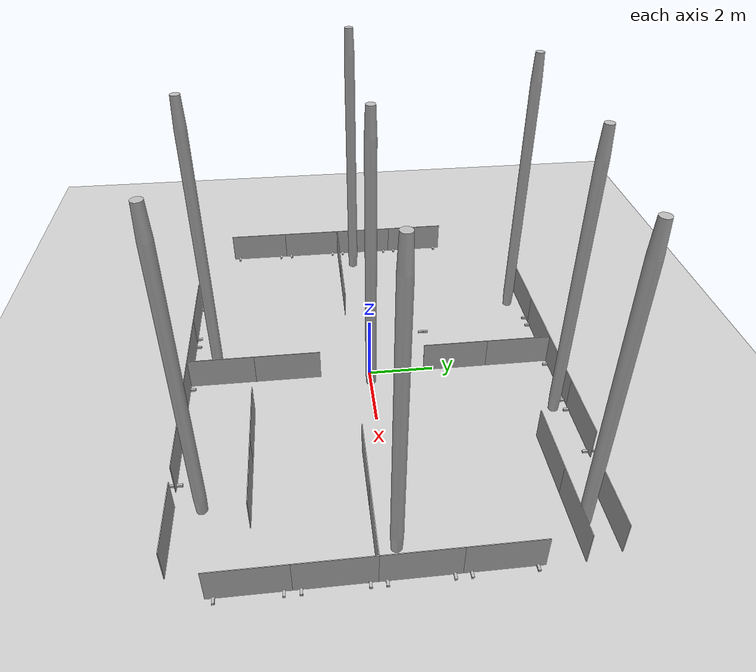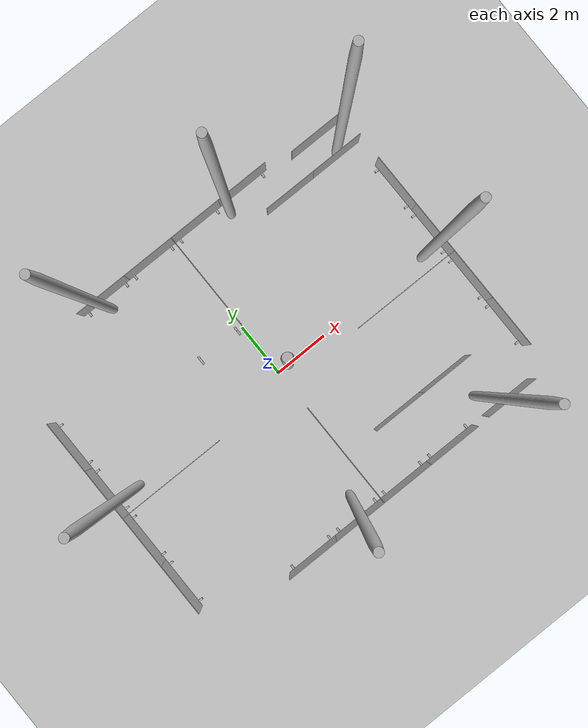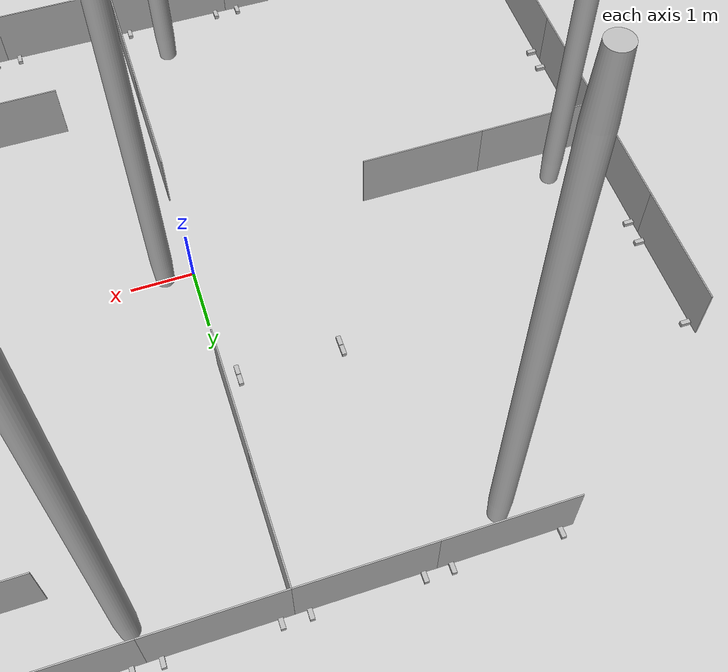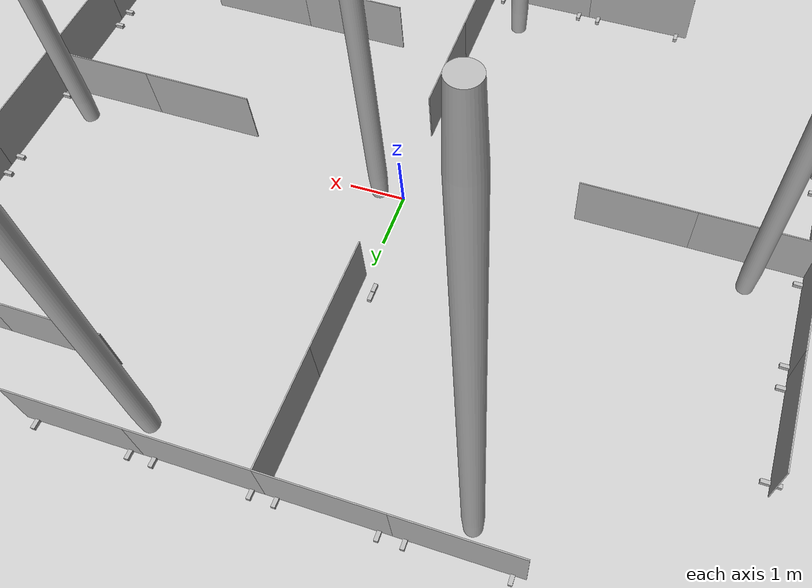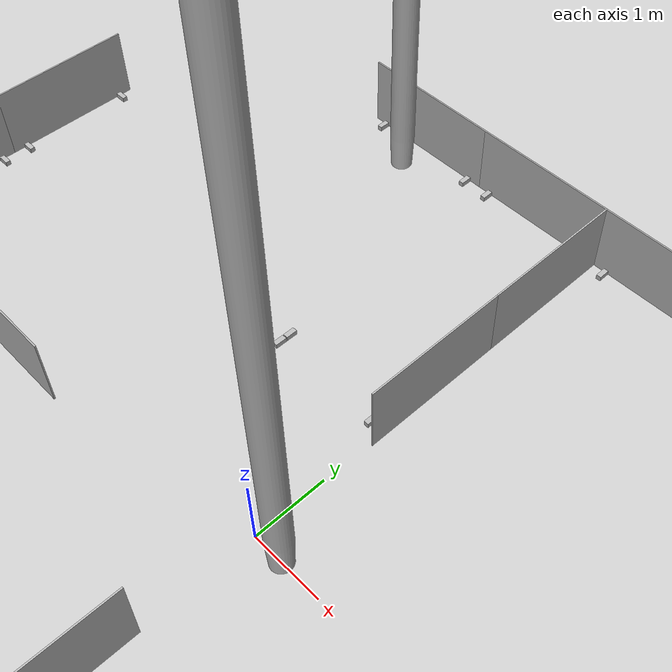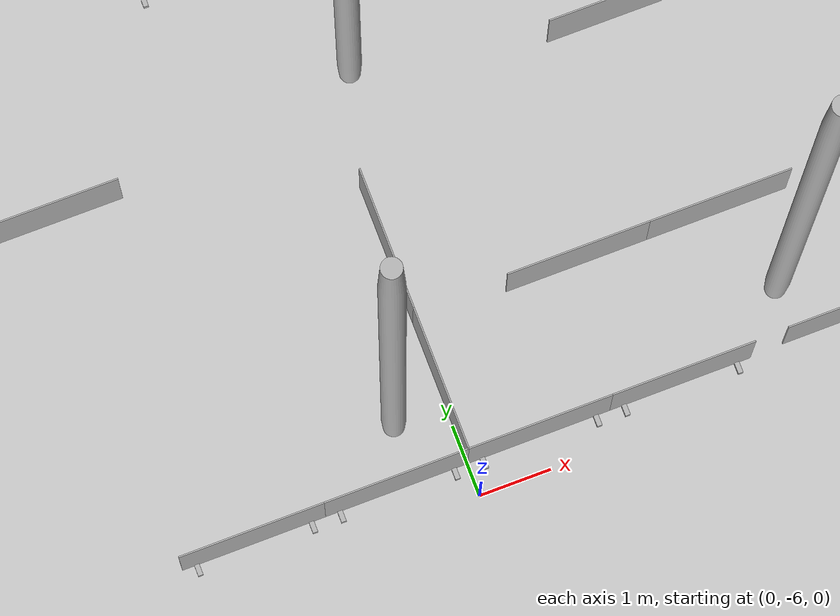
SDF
<?xml version="1.0" ?>
<sdf version="1.4">
  <!--Generated by blend2world.py-->
  <world name="default">
    <scene>
      <ambient>0.5 0.5 0.5 1</ambient>
      <background>0.5 0.5 0.5 1</background>
      <shadows>false</shadows>
    </scene>
    <plugin name="ros_interface_plugin" filename="librotors_gazebo_ros_interface_plugin.so"></plugin>
    <plugin name='gazebo_octomap' filename='librotors_gazebo_octomap_plugin.so'></plugin>
    <physics type="ode">
      <gravity>0 0 -9.81</gravity>
      <ode>
        <solver>
          <type>quick</type>
          <iters>1000</iters>
          <sor>1.3</sor>
        </solver>
        <constraints>
          <cfm>0.0</cfm>
          <erp>0.2</erp>
          <contact_max_correcting_vel>100.0</contact_max_correcting_vel>
          <contact_surface_layer>0.001</contact_surface_layer>
        </constraints>
      </ode>
      <real_time_update_rate>120</real_time_update_rate>
      <real_time_factor>1</real_time_factor>
      <max_step_size>0.008333</max_step_size>
    </physics>
    <light name="directional_light_1" type="directional">
      <cast_shadows>false</cast_shadows>
      <pose>0 0 30 0.1 0.1 0</pose>
      <diffuse>1.0 1.0 1.0 1</diffuse>
      <specular>.1 .1 .1 1</specular>
      <attenuation>
        <range>300</range>
      </attenuation>
      <direction>0.1 0.1 -1</direction>
    </light>
    <include>
      <uri>model://asphalt_plane</uri>
    </include>

    <include>
      <name>wall_2x1.083</name>
      <pose>-7.0 2.468942403793335 0.5130000114440918  0.0 -0.0 1.570796251296997</pose>
      <uri>model://wall_2x1</uri>
    </include>
    <include>
      <name>wall_2x1.084</name>
      <pose>-4.0 -0.531057596206665 0.5130000114440918  0.0 0.0 0.0</pose>
      <uri>model://wall_2x1</uri>
    </include>
    <include>
      <name>wall_stand.169</name>
      <pose>-1.8005000352859497 2.0 0.03449999913573265  0.0 -0.0 1.570796251296997</pose>
      <uri>model://wall_stand</uri>
    </include>
    <include>
      <name>wall_stand.170</name>
      <pose>-0.19949999451637268 2.0 0.03449999913573265  0.0 -0.0 1.570796251296997</pose>
      <uri>model://wall_stand</uri>
    </include>
    <include>
      <name>wall_2x1.085</name>
      <pose>-7.0 0.46894240379333496 0.5130000114440918  0.0 -0.0 1.570796251296997</pose>
      <uri>model://wall_2x1</uri>
    </include>
    <include>
      <name>wall_2x1.086</name>
      <pose>-7.0 -3.531057596206665 0.5130000114440918  0.0 -0.0 1.570796251296997</pose>
      <uri>model://wall_2x1</uri>
    </include>
    <include>
      <name>wall_2x1.087</name>
      <pose>-7.0 -1.531057596206665 0.5130000114440918  0.0 -0.0 1.570796251296997</pose>
      <uri>model://wall_2x1</uri>
    </include>
    <include>
      <name>wall_2x1.088</name>
      <pose>-6.0 -0.531057596206665 0.5130000114440918  0.0 0.0 0.0</pose>
      <uri>model://wall_2x1</uri>
    </include>
    <include>
      <name>wall_stand.177</name>
      <pose>-0.19949999451637268 2.0 0.03449999913573265  0.0 -0.0 1.570796251296997</pose>
      <uri>model://wall_stand</uri>
    </include>
    <include>
      <name>wall_stand.167</name>
      <pose>-7.0 3.269442558288574 0.03449999913573265  0.0 0.0 0.0</pose>
      <uri>model://wall_stand</uri>
    </include>
    <include>
      <name>wall_stand.168</name>
      <pose>-7.0 1.6684424877166748 0.03449999913573265  0.0 0.0 0.0</pose>
      <uri>model://wall_stand</uri>
    </include>
    <include>
      <name>wall_stand.171</name>
      <pose>-7.0 1.2694425582885742 0.03449999913573265  0.0 0.0 0.0</pose>
      <uri>model://wall_stand</uri>
    </include>
    <include>
      <name>wall_stand.172</name>
      <pose>-7.0 -0.3315575122833252 0.03449999913573265  0.0 0.0 0.0</pose>
      <uri>model://wall_stand</uri>
    </include>
    <include>
      <name>wall_stand.173</name>
      <pose>-7.0 -4.331557273864746 0.03449999913573265  0.0 0.0 0.0</pose>
      <uri>model://wall_stand</uri>
    </include>
    <include>
      <name>wall_stand.174</name>
      <pose>-7.0 -2.730557680130005 0.03449999913573265  0.0 0.0 0.0</pose>
      <uri>model://wall_stand</uri>
    </include>
    <include>
      <name>wall_stand.175</name>
      <pose>-7.0 -0.7305574417114258 0.03449999913573265  0.0 0.0 0.0</pose>
      <uri>model://wall_stand</uri>
    </include>
    <include>
      <name>wall_stand.176</name>
      <pose>-7.0 -2.331557512283325 0.03449999913573265  0.0 0.0 0.0</pose>
      <uri>model://wall_stand</uri>
    </include>
    <include>
      <name>wall_2x1.097</name>
      <pose>7.071430206298828 -3.531057596206665 0.5130000114440918  0.0 -0.0 4.71238899230957</pose>
      <uri>model://wall_2x1</uri>
    </include>
    <include>
      <name>wall_2x1.098</name>
      <pose>4.071430206298828 -0.5310573577880859 0.5130000114440918  0.0 -0.0 3.141592502593994</pose>
      <uri>model://wall_2x1</uri>
    </include>
    <include>
      <name>wall_stand.191</name>
      <pose>-1.8005000352859497 2.0 0.03449999913573265  0.0 -0.0 1.570796251296997</pose>
      <uri>model://wall_stand</uri>
    </include>
    <include>
      <name>wall_stand.192</name>
      <pose>-0.19949999451637268 2.0 0.03449999913573265  0.0 -0.0 1.570796251296997</pose>
      <uri>model://wall_stand</uri>
    </include>
    <include>
      <name>wall_2x1.099</name>
      <pose>7.071430206298828 -1.531057596206665 0.5130000114440918  0.0 -0.0 4.71238899230957</pose>
      <uri>model://wall_2x1</uri>
    </include>
    <include>
      <name>wall_2x1.100</name>
      <pose>7.071430206298828 2.468942403793335 0.5130000114440918  0.0 -0.0 4.71238899230957</pose>
      <uri>model://wall_2x1</uri>
    </include>
    <include>
      <name>wall_2x1.101</name>
      <pose>7.071430206298828 0.46894240379333496 0.5130000114440918  0.0 -0.0 4.71238899230957</pose>
      <uri>model://wall_2x1</uri>
    </include>
    <include>
      <name>wall_2x1.102</name>
      <pose>6.071430206298828 -0.5310574769973755 0.5130000114440918  0.0 -0.0 3.141592502593994</pose>
      <uri>model://wall_2x1</uri>
    </include>
    <include>
      <name>wall_stand.199</name>
      <pose>-0.19949999451637268 2.0 0.03449999913573265  0.0 -0.0 1.570796251296997</pose>
      <uri>model://wall_stand</uri>
    </include>
    <include>
      <name>wall_stand.189</name>
      <pose>7.071430206298828 -4.331557273864746 0.03450000286102295  0.0 -0.0 3.141592502593994</pose>
      <uri>model://wall_stand</uri>
    </include>
    <include>
      <name>wall_stand.190</name>
      <pose>7.071430206298828 -2.730557680130005 0.03450000286102295  0.0 -0.0 3.141592502593994</pose>
      <uri>model://wall_stand</uri>
    </include>
    <include>
      <name>wall_stand.193</name>
      <pose>7.071430206298828 -2.3315577507019043 0.03450000286102295  0.0 -0.0 3.141592502593994</pose>
      <uri>model://wall_stand</uri>
    </include>
    <include>
      <name>wall_stand.194</name>
      <pose>7.071430206298828 -0.7305576801300049 0.03450000286102295  0.0 -0.0 3.141592502593994</pose>
      <uri>model://wall_stand</uri>
    </include>
    <include>
      <name>wall_stand.195</name>
      <pose>7.071430206298828 3.269442319869995 0.03450000286102295  0.0 -0.0 3.141592502593994</pose>
      <uri>model://wall_stand</uri>
    </include>
    <include>
      <name>wall_stand.196</name>
      <pose>7.071430206298828 1.6684424877166748 0.03450000286102295  0.0 -0.0 3.141592502593994</pose>
      <uri>model://wall_stand</uri>
    </include>
    <include>
      <name>wall_stand.197</name>
      <pose>7.071430206298828 -0.3315577507019043 0.03450000286102295  0.0 -0.0 3.141592502593994</pose>
      <uri>model://wall_stand</uri>
    </include>
    <include>
      <name>wall_stand.198</name>
      <pose>7.071430206298828 1.2694423198699951 0.03450000286102295  0.0 -0.0 3.141592502593994</pose>
      <uri>model://wall_stand</uri>
    </include>
    <include>
      <name>wall_2x1.103</name>
      <pose>-2.989354133605957 -5.530285835266113 0.5130000114440918  0.0 -0.0 3.141592502593994</pose>
      <uri>model://wall_2x1</uri>
    </include>
    <include>
      <name>wall_2x1.104</name>
      <pose>0.010646045207977295 -2.5302858352661133 0.5130000114440918  0.0 -0.0 1.570796251296997</pose>
      <uri>model://wall_2x1</uri>
    </include>
    <include>
      <name>wall_stand.202</name>
      <pose>-1.8005000352859497 2.0 0.03449999913573265  0.0 -0.0 1.570796251296997</pose>
      <uri>model://wall_stand</uri>
    </include>
    <include>
      <name>wall_stand.203</name>
      <pose>-0.19949999451637268 2.0 0.03449999913573265  0.0 -0.0 1.570796251296997</pose>
      <uri>model://wall_stand</uri>
    </include>
    <include>
      <name>wall_2x1.105</name>
      <pose>-0.9893541932106018 -5.530285835266113 0.5130000114440918  0.0 -0.0 3.141592502593994</pose>
      <uri>model://wall_2x1</uri>
    </include>
    <include>
      <name>wall_2x1.106</name>
      <pose>3.010645627975464 -5.530285835266113 0.5130000114440918  0.0 -0.0 3.141592502593994</pose>
      <uri>model://wall_2x1</uri>
    </include>
    <include>
      <name>wall_2x1.107</name>
      <pose>1.010645866394043 -5.530285835266113 0.5130000114440918  0.0 -0.0 3.141592502593994</pose>
      <uri>model://wall_2x1</uri>
    </include>
    <include>
      <name>wall_2x1.108</name>
      <pose>0.010645806789398193 -4.530285835266113 0.5130000114440918  0.0 -0.0 1.570796251296997</pose>
      <uri>model://wall_2x1</uri>
    </include>
    <include>
      <name>wall_stand.210</name>
      <pose>-0.19949999451637268 2.0 0.03449999913573265  0.0 -0.0 1.570796251296997</pose>
      <uri>model://wall_stand</uri>
    </include>
    <include>
      <name>wall_stand.200</name>
      <pose>-3.7898542881011963 -5.530285835266113 0.03450000286102295  0.0 -0.0 1.570796251296997</pose>
      <uri>model://wall_stand</uri>
    </include>
    <include>
      <name>wall_stand.201</name>
      <pose>-2.188854217529297 -5.530285835266113 0.03450000286102295  0.0 -0.0 1.570796251296997</pose>
      <uri>model://wall_stand</uri>
    </include>
    <include>
      <name>wall_stand.204</name>
      <pose>-1.7898542881011963 -5.530285835266113 0.03450000286102295  0.0 -0.0 1.570796251296997</pose>
      <uri>model://wall_stand</uri>
    </include>
    <include>
      <name>wall_stand.205</name>
      <pose>-0.18885427713394165 -5.530285835266113 0.03450000286102295  0.0 -0.0 1.570796251296997</pose>
      <uri>model://wall_stand</uri>
    </include>
    <include>
      <name>wall_stand.206</name>
      <pose>3.811145544052124 -5.530285835266113 0.03450000286102295  0.0 -0.0 1.570796251296997</pose>
      <uri>model://wall_stand</uri>
    </include>
    <include>
      <name>wall_stand.207</name>
      <pose>2.210145950317383 -5.530285835266113 0.03450000286102295  0.0 -0.0 1.570796251296997</pose>
      <uri>model://wall_stand</uri>
    </include>
    <include>
      <name>wall_stand.208</name>
      <pose>0.21014565229415894 -5.530285835266113 0.03450000286102295  0.0 -0.0 1.570796251296997</pose>
      <uri>model://wall_stand</uri>
    </include>
    <include>
      <name>wall_stand.209</name>
      <pose>1.8111457824707031 -5.530285835266113 0.03450000286102295  0.0 -0.0 1.570796251296997</pose>
      <uri>model://wall_stand</uri>
    </include>
    <include>
      <name>wall_2x1.109</name>
      <pose>3.0413644313812256 5.695001602172852 0.5130000114440918  0.0 -0.0 6.283185005187988</pose>
      <uri>model://wall_2x1</uri>
    </include>
    <include>
      <name>wall_2x1.110</name>
      <pose>0.04136395454406738 2.695002794265747 0.5130000114440918  0.0 -0.0 4.71238899230957</pose>
      <uri>model://wall_2x1</uri>
    </include>
    <include>
      <name>wall_stand.213</name>
      <pose>-1.8005000352859497 2.0 0.03449999913573265  0.0 -0.0 1.570796251296997</pose>
      <uri>model://wall_stand</uri>
    </include>
    <include>
      <name>wall_stand.214</name>
      <pose>-0.19949999451637268 2.0 0.03449999913573265  0.0 -0.0 1.570796251296997</pose>
      <uri>model://wall_stand</uri>
    </include>
    <include>
      <name>wall_2x1.111</name>
      <pose>1.0413646697998047 5.695002555847168 0.5130000114440918  0.0 -0.0 6.283185005187988</pose>
      <uri>model://wall_2x1</uri>
    </include>
    <include>
      <name>wall_2x1.112</name>
      <pose>-2.9586355686187744 5.695002555847168 0.5130000114440918  0.0 -0.0 6.283185005187988</pose>
      <uri>model://wall_2x1</uri>
    </include>
    <include>
      <name>wall_2x1.113</name>
      <pose>-0.9586355686187744 5.695002555847168 0.5130000114440918  0.0 -0.0 6.283185005187988</pose>
      <uri>model://wall_2x1</uri>
    </include>
    <include>
      <name>wall_2x1.114</name>
      <pose>0.041364431381225586 4.695002555847168 0.5130000114440918  0.0 -0.0 4.71238899230957</pose>
      <uri>model://wall_2x1</uri>
    </include>
    <include>
      <name>wall_stand.221</name>
      <pose>-0.19949999451637268 2.0 0.03449999913573265  0.0 -0.0 1.570796251296997</pose>
      <uri>model://wall_stand</uri>
    </include>
    <include>
      <name>wall_stand.211</name>
      <pose>3.841865062713623 5.695001602172852 0.03450000286102295  0.0 -0.0 4.71238899230957</pose>
      <uri>model://wall_stand</uri>
    </include>
    <include>
      <name>wall_stand.212</name>
      <pose>2.2408647537231445 5.695002555847168 0.03450000286102295  0.0 -0.0 4.71238899230957</pose>
      <uri>model://wall_stand</uri>
    </include>
    <include>
      <name>wall_stand.215</name>
      <pose>1.8418647050857544 5.695002555847168 0.03450000286102295  0.0 -0.0 4.71238899230957</pose>
      <uri>model://wall_stand</uri>
    </include>
    <include>
      <name>wall_stand.216</name>
      <pose>0.24086451530456543 5.695002555847168 0.03450000286102295  0.0 -0.0 4.71238899230957</pose>
      <uri>model://wall_stand</uri>
    </include>
    <include>
      <name>wall_stand.217</name>
      <pose>-3.7591354846954346 5.695002555847168 0.03450000286102295  0.0 -0.0 4.71238899230957</pose>
      <uri>model://wall_stand</uri>
    </include>
    <include>
      <name>wall_stand.218</name>
      <pose>-2.1581356525421143 5.695002555847168 0.03450000286102295  0.0 -0.0 4.71238899230957</pose>
      <uri>model://wall_stand</uri>
    </include>
    <include>
      <name>wall_stand.219</name>
      <pose>-0.15813517570495605 5.695002555847168 0.03450000286102295  0.0 -0.0 4.71238899230957</pose>
      <uri>model://wall_stand</uri>
    </include>
    <include>
      <name>wall_stand.220</name>
      <pose>-1.7591354846954346 5.695002555847168 0.03450000286102295  0.0 -0.0 4.71238899230957</pose>
      <uri>model://wall_stand</uri>
    </include>
    <include>
      <name>wall_stand.222</name>
      <pose>-1.8005000352859497 2.0 0.03449999913573265  0.0 -0.0 1.570796251296997</pose>
      <uri>model://wall_stand</uri>
    </include>
    <include>
      <name>wall_stand.223</name>
      <pose>-0.19949999451637268 2.0 0.03449999913573265  0.0 -0.0 1.570796251296997</pose>
      <uri>model://wall_stand</uri>
    </include>
    <include>
      <name>wall_2x1.116</name>
      <pose>5.476836204528809 -5.509757041931152 0.5130000114440918  0.0 -0.0 6.2831854820251465</pose>
      <uri>model://wall_2x1</uri>
    </include>
    <include>
      <name>wall_stand.224</name>
      <pose>-1.8005000352859497 2.0 0.03449999913573265  0.0 -0.0 1.570796251296997</pose>
      <uri>model://wall_stand</uri>
    </include>
    <include>
      <name>wall_stand.225</name>
      <pose>-0.19949999451637268 2.0 0.03449999913573265  0.0 -0.0 1.570796251296997</pose>
      <uri>model://wall_stand</uri>
    </include>
    <include>
      <name>wall_2x1.117</name>
      <pose>4.3128767013549805 -3.5467369556427 0.5130000114440918  0.0 -0.0 6.2831854820251465</pose>
      <uri>model://wall_2x1</uri>
    </include>
    <include>
      <name>wall_stand.226</name>
      <pose>-1.8005000352859497 2.0 0.03449999913573265  0.0 -0.0 1.570796251296997</pose>
      <uri>model://wall_stand</uri>
    </include>
    <include>
      <name>wall_stand.227</name>
      <pose>-0.19949999451637268 2.0 0.03449999913573265  0.0 -0.0 1.570796251296997</pose>
      <uri>model://wall_stand</uri>
    </include>
    <include>
      <name>wall_2x1.118</name>
      <pose>2.3128767013549805 -3.5467369556427 0.5130000114440918  0.0 -0.0 6.2831854820251465</pose>
      <uri>model://wall_2x1</uri>
    </include>
    <include>
      <name>wall_stand.228</name>
      <pose>-1.8005000352859497 2.0 0.03449999913573265  0.0 -0.0 1.570796251296997</pose>
      <uri>model://wall_stand</uri>
    </include>
    <include>
      <name>wall_stand.229</name>
      <pose>-0.19949999451637268 2.0 0.03449999913573265  0.0 -0.0 1.570796251296997</pose>
      <uri>model://wall_stand</uri>
    </include>
    <include>
      <name>wall_2x1.119</name>
      <pose>5.946268081665039 5.418047904968262 0.5130000114440918  0.0 -0.0 9.42477798461914</pose>
      <uri>model://wall_2x1</uri>
    </include>
    <include>
      <name>wall_stand.230</name>
      <pose>-1.8005000352859497 2.0 0.03449999913573265  0.0 -0.0 1.570796251296997</pose>
      <uri>model://wall_stand</uri>
    </include>
    <include>
      <name>wall_stand.231</name>
      <pose>-0.19949999451637268 2.0 0.03449999913573265  0.0 -0.0 1.570796251296997</pose>
      <uri>model://wall_stand</uri>
    </include>
    <include>
      <name>wall_2x1.120</name>
      <pose>4.110227108001709 4.4550275802612305 0.5130000114440918  0.0 -0.0 9.42477798461914</pose>
      <uri>model://wall_2x1</uri>
    </include>
    <include>
      <name>wall_stand.232</name>
      <pose>-1.8005000352859497 2.0 0.03449999913573265  0.0 -0.0 1.570796251296997</pose>
      <uri>model://wall_stand</uri>
    </include>
    <include>
      <name>wall_stand.233</name>
      <pose>-0.19949999451637268 2.0 0.03449999913573265  0.0 -0.0 1.570796251296997</pose>
      <uri>model://wall_stand</uri>
    </include>
    <include>
      <name>wall_2x1.121</name>
      <pose>6.110227108001709 4.4550275802612305 0.5130000114440918  0.0 -0.0 9.42477798461914</pose>
      <uri>model://wall_2x1</uri>
    </include>
    <include>
      <name>wall_stand.234</name>
      <pose>-1.8005000352859497 2.0 0.03449999913573265  0.0 -0.0 1.570796251296997</pose>
      <uri>model://wall_stand</uri>
    </include>
    <include>
      <name>wall_stand.235</name>
      <pose>-0.19949999451637268 2.0 0.03449999913573265  0.0 -0.0 1.570796251296997</pose>
      <uri>model://wall_stand</uri>
    </include>
    <include>
      <name>barrel_110l</name>
      <pose>-6.063030242919922 0.0 0.0  0.0 0.0 0.0</pose>
      <uri>model://barrel_110l</uri>
    </include>
    <include>
      <name>barrel_110l.001</name>
      <pose>-3.0217368602752686 5.237995624542236 0.0  0.0 0.0 0.0</pose>
      <uri>model://barrel_110l</uri>
    </include>
    <include>
      <name>barrel_110l.002</name>
      <pose>2.1513140201568604 5.237995624542236 0.0  0.0 0.0 0.0</pose>
      <uri>model://barrel_110l</uri>
    </include>
    <include>
      <name>barrel_110l.003</name>
      <pose>6.276121139526367 4.623660087585449 0.0  0.0 0.0 0.0</pose>
      <uri>model://barrel_110l</uri>
    </include>
    <include>
      <name>barrel_110l.004</name>
      <pose>4.665648460388184 -4.783429145812988 0.0  0.0 0.0 0.0</pose>
      <uri>model://barrel_110l</uri>
    </include>
    <include>
      <name>barrel_110l.006</name>
      <pose>6.263016223907471 -0.004051387310028076 0.0  0.0 0.0 0.0</pose>
      <uri>model://barrel_110l</uri>
    </include>
    <include>
      <name>barrel_110l.007</name>
      <pose>0.43812131881713867 -0.004051387310028076 0.0  0.0 0.0 0.0</pose>
      <uri>model://barrel_110l</uri>
    </include>
    <include>
      <name>barrel_110l.008</name>
      <pose>-0.7261247634887695 -4.73142147064209 0.0  0.0 0.0 0.0</pose>
      <uri>model://barrel_110l</uri>
    </include>
  </world>
</sdf>

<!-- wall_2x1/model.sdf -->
<sdf version="1.4">
  <!--Generated by blend2world.py-->
    <model name="wall_2x1">
      <pose>0.0 0.0 0.0  0.0 0.0 0.0</pose>
      <static>true</static>
      <link name="body">
        <collision name="collision">
          <geometry>
            <mesh>
              <uri>model://wall_2x1/meshes/wall_2x1.dae</uri>
              <scale>1 1 1</scale>
            </mesh>
          </geometry>
        </collision>
        <visual name="visual">
          <geometry>
            <mesh>
              <uri>model://wall_2x1/meshes/wall_2x1.dae</uri>
              <scale>1 1 1</scale>
            </mesh>
          </geometry>
	  <material>
            <script>
              <uri>model://wall_2x1/textures/chipboard.jpg</uri>
            </script>
          </material>
        </visual>
      </link>
    </model>
</sdf>

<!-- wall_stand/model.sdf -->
<sdf version="1.4">
  <!--Generated by blend2world.py-->
    <model name="wall_stand">
      <pose>0.0 0.0 0.0  0.0 0.0 0.0</pose>
      <static>true</static>
      <link name="body">
        <collision name="collision">
          <geometry>
            <mesh>
              <uri>model://wall_stand/meshes/wall_stand.dae</uri>
              <scale>1 1 1</scale>
            </mesh>
          </geometry>
        </collision>
        <visual name="visual">
          <geometry>
            <mesh>
              <uri>model://wall_stand/meshes/wall_stand.dae</uri>
              <scale>1 1 1</scale>
            </mesh>
          </geometry>
	  <material>
            <script>
              <uri>model://wall_stand/textures/ahorn_gr.jpg</uri>
            </script>
          </material>
        </visual>
      </link>
    </model>
</sdf>

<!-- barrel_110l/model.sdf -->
<sdf version="1.4">
  <!--Generated by blend2world.py-->
    <model name="barel_110l">
      <pose>0.0 0.0 0.0  0.0 0.0 0.0</pose>
      <static>true</static>
      <link name="body">
        <collision name="collision">
          <geometry>
            <mesh>
              <uri>model://barrel_110l/meshes/barrel_110l.dae</uri>
              <scale>1 1 15</scale>
            </mesh>
          </geometry>
        </collision>
        <visual name="visual">
          <geometry>
            <mesh>
              <uri>model://barrel_110l/meshes/barrel_110l.dae</uri>
              <scale>1 1 15</scale>
            </mesh>
          </geometry>
	  <material>
            <script>
              <uri>model://barrel_110l/textures/barrel_110l.jpg</uri>
            </script>
          </material>
        </visual>
      </link>
    </model>
</sdf>
